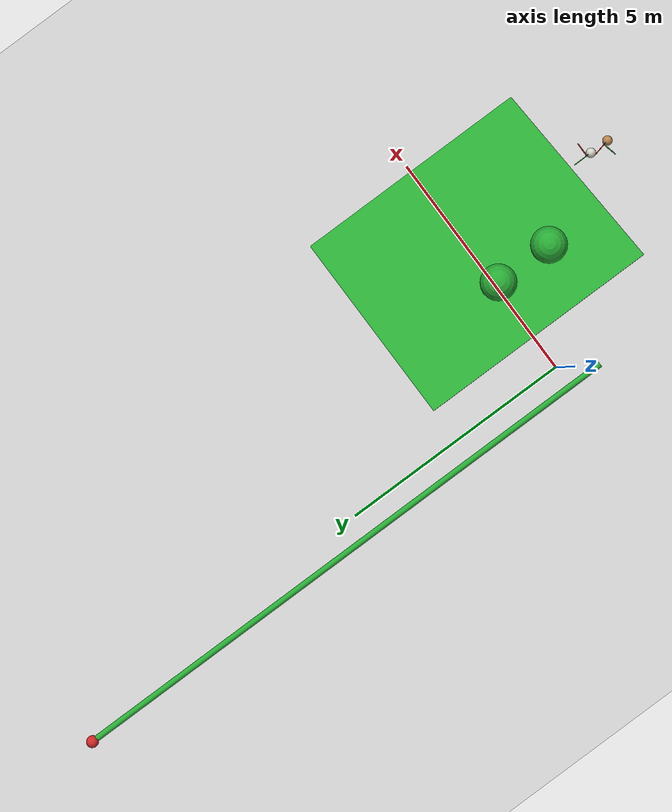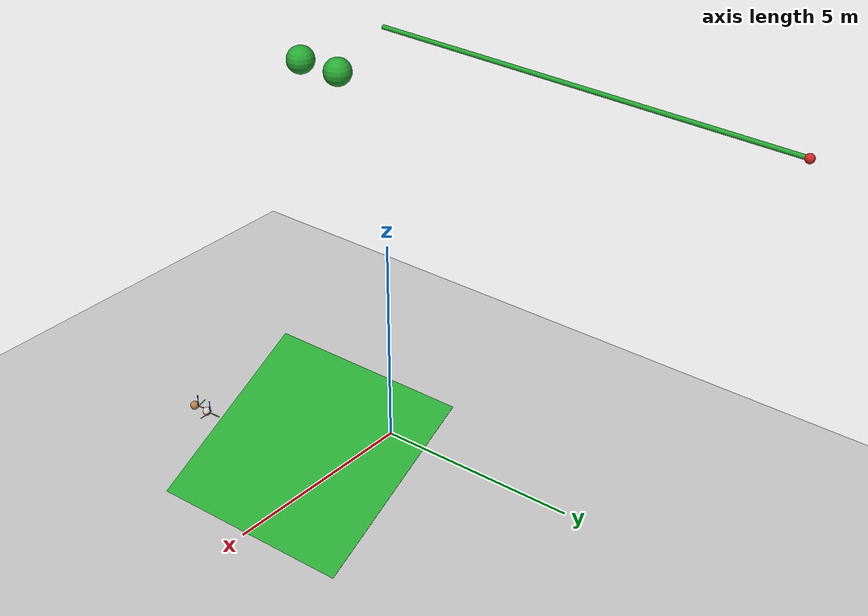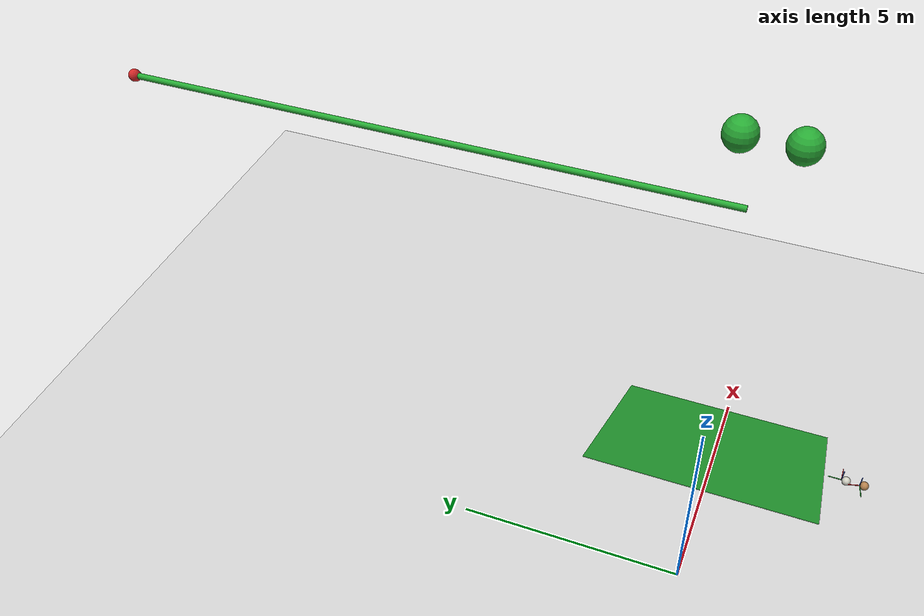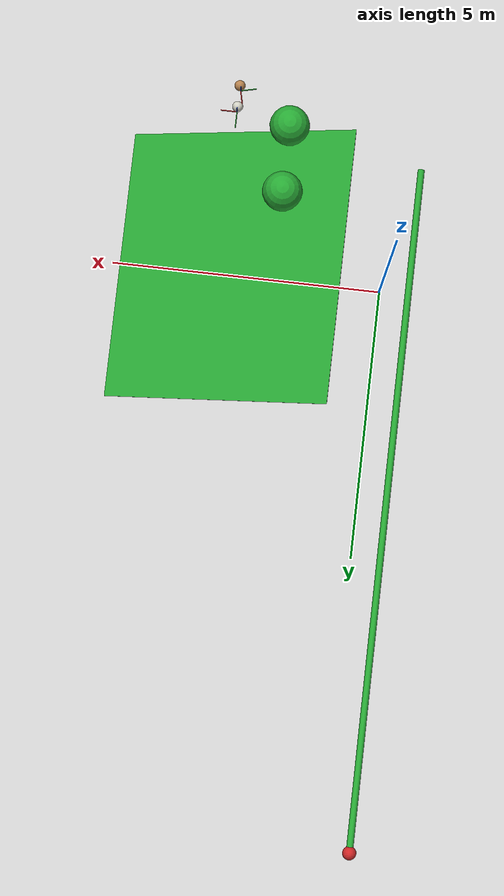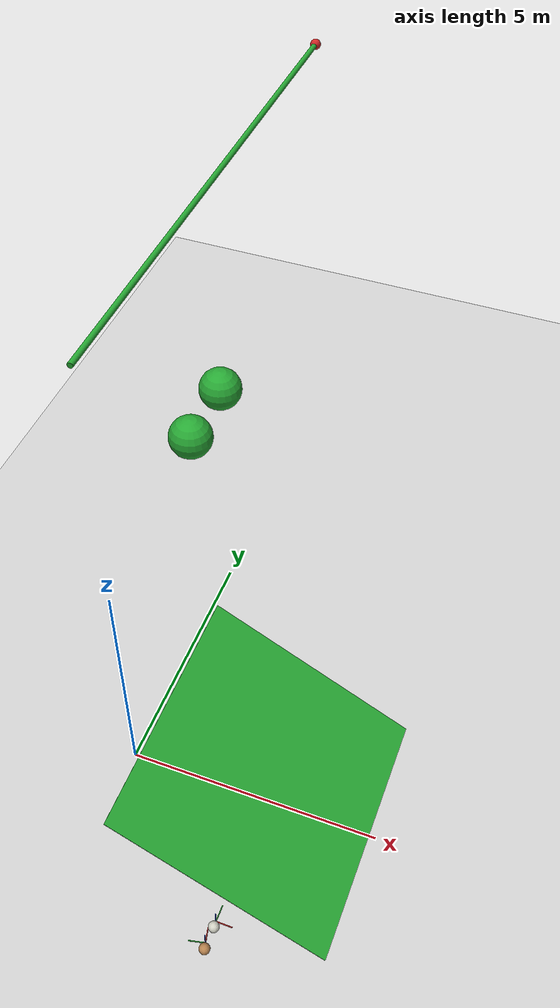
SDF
<?xml version="1.0" ?>
<sdf version="1.6">
  <world name="default">
    <gravity>0.000000 0.000000 -9.810000</gravity>
    <physics type="ode">
      <ode>
        <solver>
          <type>quick</type>
          <iters>1000</iters>
          <precon_iters>0</precon_iters>
          <sor>1.000000</sor>
        </solver>
        <constraints>
          <cfm>0.000000</cfm>
          <erp>0.200000</erp>
          <contact_max_correcting_vel>100.000000</contact_max_correcting_vel>
          <contact_surface_layer>0.01000</contact_surface_layer>
        </constraints>
      </ode>
      <bullet>
        <solver>
          <type>sequential_impulse</type>
          <iters>1000</iters>
          <sor>1.000000</sor>
        </solver>
        <constraints>
          <cfm>0.000000</cfm>
          <erp>0.200000</erp>
          <split_impulse>true</split_impulse>
          <split_impulse_penetration_threshold>-0.01</split_impulse_penetration_threshold>
          <contact_surface_layer>0.00000</contact_surface_layer>
        </constraints>
      </bullet>
      <real_time_update_rate>0.000000</real_time_update_rate>
      <max_step_size>0.001</max_step_size>
    </physics>
    <include>
      <uri>model://sun</uri>
    </include>
    <include>
      <uri>model://ground_plane</uri>
    </include>

    <spherical_coordinates>
      <surface_model>EARTH_WGS84</surface_model>
      <latitude_deg>37.4</latitude_deg>
      <longitude_deg>-122.1</longitude_deg>
      <elevation>0.0</elevation>
      <heading_deg>90</heading_deg>
    </spherical_coordinates>

    <model name="model_pendulum">
      <pose>0.0 0.0 10.2 1.57079633 0.0 0.0</pose>
      <link name="link_pendulum_rod">
        <pose>0.0 0.0 0.0 0.0 0.0 0.0</pose>
        <inertial>
          <pose>0.0 0.0 -10.0 0.0 0.0 0.0</pose>
          <inertia>
            <ixx>1e-1</ixx>
            <ixy>0.0</ixy>
            <ixz>0.0</ixz>
            <iyy>1e-1</iyy>
            <iyz>0.0</iyz>
            <izz>1e-1</izz>
          </inertia>
          <mass>5.0</mass>
        </inertial>
        <velocity_decay>
          <linear>0.0</linear>
          <angular>0.0</angular>
        </velocity_decay>
        <visual name="visual_cylinder">
          <pose>0.0 0.0 -5.0 0.0 0.0 0.0</pose>
          <geometry>
            <cylinder>
              <radius>0.05</radius>
              <length>10.0</length>
            </cylinder>
          </geometry>
          <material>
            <script><uri>file://media/materials/scripts/gazebo.material</uri><name>Gazebo/Green</name></script>
          </material>
        </visual>
        <collision name="collision_cylinder">
          <pose>0.0 0.0 -5.0 0.0 0.0 0.0</pose>
          <max_contacts>250</max_contacts>
          <geometry>
            <cylinder>
              <radius>0.05</radius>
              <length>10.0</length>
            </cylinder>
          </geometry>
        </collision>
        <gravity>true</gravity>
        <self_collide>true</self_collide>
        <kinematic>false</kinematic>
      </link>
      <joint name="joint_0" type="revolute">
        <parent>world</parent>
        <child>link_pendulum_rod</child>
        <pose>0.0 0.0 0.0 0.0 0.0 0.0</pose>
        <axis>
          <xyz>1.0 0.0 0.0</xyz>
        </axis>
      </joint>
      <link name="link_pendulum_ball">
        <pose>0.0 0.0 -10.0 0.0 0.0 0.0</pose>
        <inertial>
          <pose>0.0 0.0 0.0 0.0 0.0 0.0</pose>
          <inertia>
            <ixx>1e-1</ixx>
            <ixy>0.0</ixy>
            <ixz>0.0</ixz>
            <iyy>1e-1</iyy>
            <iyz>0.0</iyz>
            <izz>1e-1</izz>
          </inertia>
          <mass>5.0</mass>
        </inertial>
        <velocity_decay>
          <linear>0.0</linear>
          <angular>0.0</angular>
        </velocity_decay>
        <visual name="visual_sphere">
          <pose>0.0 0.0 0.0 0.0 0.0 0.0</pose>
          <geometry>
            <sphere>
              <radius>0.1</radius>
            </sphere>
          </geometry>
          <material>
            <script><uri>file://media/materials/scripts/gazebo.material</uri><name>Gazebo/Red</name></script>
          </material>
        </visual>
        <collision name="collision_sphere">
          <pose>0.0 0.0 0.0 0.0 0.0 0.0</pose>
          <max_contacts>250</max_contacts>
          <geometry>
            <sphere>
              <radius>0.1</radius>
            </sphere>
          </geometry>
        </collision>
        <gravity>true</gravity>
        <self_collide>true</self_collide>
        <kinematic>false</kinematic>
        <sensor name="pendulum_imu_sensor" type="imu">
          <always_on>1</always_on>
          <plugin name="pendulum_imu_sensor_plugin" filename="libImuSensorPlugin.so">
            <custom>1</custom>
          </plugin>
        </sensor>
      </link>
      <joint name="joint_1" type="revolute">
        <parent>link_pendulum_rod</parent>
        <child>link_pendulum_ball</child>
        <pose>0.0 0.0 0.0 0.0 0.0 0.0</pose>
        <axis>
          <limit>
            <lower>0</lower>
            <upper>0</upper>
            <effort>0</effort>
            <velocity>0</velocity>
          </limit>
          <xyz>0 0 1</xyz>
        </axis>
      </joint>
      <static>false</static>
    </model>

    <model name="model_ramp">
      <pose>3.0 0.0 1.0 0.0 0.5 0.0</pose>
      <link name="link_ramp">
        <pose>0.0 0.0 0.0 0.0 0.0 0.0</pose>
        <inertial>
          <pose>0.0 0.0 -10.0 0.0 0.0 0.0</pose>
          <inertia>
            <ixx>1e-1</ixx>
            <ixy>0.0</ixy>
            <ixz>0.0</ixz>
            <iyy>1e-1</iyy>
            <iyz>0.0</iyz>
            <izz>1e-1</izz>
          </inertia>
          <mass>5.0</mass>
        </inertial>
        <velocity_decay>
          <linear>0.0</linear>
          <angular>0.0</angular>
        </velocity_decay>
        <visual name="visual_sphere">
          <pose>0.0 0.0 0.0 0.0 0.0 0.0</pose>
          <geometry>
            <box>
              <size>5 5 0.01</size>
            </box>
          </geometry>
          <material>
            <script><uri>file://media/materials/scripts/gazebo.material</uri><name>Gazebo/Green</name></script>
          </material>
        </visual>
        <collision name="collision_box">
          <pose>0.0 0.0 0.0 0.0 0.0 0.0</pose>
          <max_contacts>250</max_contacts>
          <geometry>
            <box>
              <size>5 5 0.01</size>
            </box>
          </geometry>
        </collision>
        <gravity>true</gravity>
        <self_collide>true</self_collide>
        <kinematic>false</kinematic>
      </link>
      <static>true</static>
    </model>

    <model name="model_ball">
      <pose>2.0 -0.5 10.0 0.0 0.0 0.0</pose>
      <link name="link_ball">
        <pose>0.0 0.0 0.0 0.0 0.0 0.0</pose>
        <inertial>
          <pose>0.0 0.0 0.0 0.0 0.0 0.0</pose>
          <inertia>
            <ixx>1e-1</ixx>
            <ixy>0.0</ixy>
            <ixz>0.0</ixz>
            <iyy>1e-1</iyy>
            <iyz>0.0</iyz>
            <izz>1e-1</izz>
          </inertia>
          <mass>5.0</mass>
        </inertial>
        <velocity_decay>
          <linear>0.0</linear>
          <angular>0.0</angular>
        </velocity_decay>
        <visual name="visual_sphere">
          <pose>0.0 0.0 0.0 0.0 0.0 0.0</pose>
          <geometry>
            <sphere>
              <radius>0.3</radius>
            </sphere>
          </geometry>
          <material>
            <script><uri>file://media/materials/scripts/gazebo.material</uri><name>Gazebo/Green</name></script>
          </material>
        </visual>
        <collision name="collision_sphere">
          <pose>0.0 0.0 0.0 0.0 0.0 0.0</pose>
          <max_contacts>250</max_contacts>
          <geometry>
            <sphere>
              <radius>0.3</radius>
            </sphere>
          </geometry>
        </collision>
        <gravity>true</gravity>
        <self_collide>true</self_collide>
        <kinematic>false</kinematic>
        <sensor name="ball_imu_sensor" type="imu">
          <always_on>1</always_on>
          <plugin name="ball_imu_sensor_plugin" filename="libImuSensorPlugin.so">
            <custom>1</custom>
          </plugin>
        </sensor>
      </link>
      <static>false</static>
    </model>

    <model name="model_ball_no_friction">
      <pose>2.0 0.5 10.0 0.0 0 0.0</pose>
      <link name="link_ball_no_friction">
        <pose>0.0 0.0 0.0 0.0 0.0 0.0</pose>
        <inertial>
          <pose>0.0 0.0 0.0 0.0 0.0 0.0</pose>
          <inertia>
            <ixx>1e-1</ixx>
            <ixy>0.0</ixy>
            <ixz>0.0</ixz>
            <iyy>1e-1</iyy>
            <iyz>0.0</iyz>
            <izz>1e-1</izz>
          </inertia>
          <mass>5.0</mass>
        </inertial>
        <velocity_decay>
          <linear>0.0</linear>
          <angular>0.0</angular>
        </velocity_decay>
        <visual name="visual_sphere">
          <pose>0.0 0.0 0.0 0.0 0.0 0.0</pose>
          <geometry>
            <sphere>
              <radius>0.3</radius>
            </sphere>
          </geometry>
          <material>
            <script><uri>file://media/materials/scripts/gazebo.material</uri><name>Gazebo/Green</name></script>
          </material>
        </visual>
        <collision name="collision_sphere">
          <pose>0.0 0.0 0.0 0.0 0.0 0.0</pose>
          <max_contacts>250</max_contacts>
          <geometry>
            <sphere>
              <radius>0.3</radius>
            </sphere>
          </geometry>
          <surface>
            <friction>
              <ode>
                <mu>0</mu>
                <mu2>0</mu2>
              </ode>
            </friction>
          </surface>
        </collision>
        <gravity>true</gravity>
        <self_collide>true</self_collide>
        <kinematic>false</kinematic>
        <sensor name="ball_no_friction_imu_sensor" type="imu">
          <always_on>1</always_on>
          <plugin name="ball_no_friction_imu_sensor_plugin" filename="libImuSensorPlugin.so">
            <custom>1</custom>
          </plugin>
        </sensor>
      </link>
      <static>false</static>
    </model>

    <model name="model_floating_imu">
      <pose>3.0 -3.0 1.0 0.0 0.0 0.0</pose>
      <link name="link_floating_imu">
        <pose>0.0 0.0 -0.05 0.0 0.0 0.0</pose>
        <inertial>
          <inertia>
            <ixx>1e-1</ixx>
            <ixy>0.0</ixy>
            <ixz>0.0</ixz>
            <iyy>1e-1</iyy>
            <iyz>0.0</iyz>
            <izz>1e-1</izz>
          </inertia>
          <mass>5.0</mass>
        </inertial>
        <visual name="visual_sphere">
          <geometry>
            <sphere>
              <radius>0.1</radius>
            </sphere>
          </geometry>
          <material>
            <script>
              <uri>file://media/materials/scripts/gazebo.material</uri>
              <name>Gazebo/PaintedWall</name>
            </script>
          </material>
        </visual>
        <visual name="visual_x">
          <pose>0.15 0.1 0.0 0.0 1.5708 0.0</pose>
          <geometry>
            <cylinder>
              <length>0.30</length>
              <radius>0.01</radius>
            </cylinder>
          </geometry>
          <material>
            <script>
              <uri>file://media/materials/scripts/gazebo.material</uri>
              <name>Gazebo/Red</name>
            </script>
          </material>
        </visual>
        <visual name="visual_y">
          <pose>0.0 0.25 0.0 1.5708 0.0 0.0</pose>
          <geometry>
            <cylinder>
              <length>0.30</length>
              <radius>0.01</radius>
            </cylinder>
          </geometry>
          <material>
            <script>
              <uri>file://media/materials/scripts/gazebo.material</uri>
              <name>Gazebo/Green</name>
            </script>
          </material>
        </visual>
        <visual name="visual_z">
          <pose>0.0 0.1 0.15 0.0 0.0 0.0</pose>
          <geometry>
            <cylinder>
              <length>0.30</length>
              <radius>0.01</radius>
            </cylinder>
          </geometry>
          <material>
            <script>
              <uri>file://media/materials/scripts/gazebo.material</uri>
              <name>Gazebo/Blue</name>
            </script>
          </material>
        </visual>
        <collision name="collision_sphere">
          <max_contacts>250</max_contacts>
          <geometry>
            <sphere>
              <radius>0.1</radius>
            </sphere>
          </geometry>
        </collision>
        <gravity>false</gravity>
        <self_collide>false</self_collide>
        <kinematic>false</kinematic>
        <sensor name="ball_floating_imu_sensor" type="imu">
          <pose>0 0.1 0 0 0 0</pose>
          <always_on>1</always_on>
          <plugin name="ball_floating_imu_sensor_plugin" filename="libImuSensorPlugin.so">
            <custom>1</custom>
          </plugin>
        </sensor>
      </link>
      <link name="link_floating_imu_2">
        <pose>0.0 -0.40 -0.05 0.0 0.0 1.8</pose>
        <inertial>
          <inertia>
            <ixx>1e-1</ixx>
            <ixy>0.0</ixy>
            <ixz>0.0</ixz>
            <iyy>1e-1</iyy>
            <iyz>0.0</iyz>
            <izz>1e-1</izz>
          </inertia>
          <mass>5.0</mass>
        </inertial>
        <visual name="visual_sphere">
          <geometry>
            <sphere>
              <radius>0.1</radius>
            </sphere>
          </geometry>
          <material>
            <script>
              <uri>file://media/materials/scripts/gazebo.material</uri>
              <name>Gazebo/WoodFloor</name>
            </script>
          </material>
        </visual>
        <visual name="visual_x">
          <pose>0.21 0.0 0.0 0.0 1.5708 0.0</pose>
          <geometry>
            <cylinder>
              <length>0.30</length>
              <radius>0.01</radius>
            </cylinder>
          </geometry>
          <material>
            <script>
              <uri>file://media/materials/scripts/gazebo.material</uri>
              <name>Gazebo/Red</name>
            </script>
          </material>
        </visual>
        <visual name="visual_y">
          <pose>0.1 0.15 0.0 1.5708 0.0 0.0</pose>
          <geometry>
            <cylinder>
              <length>0.30</length>
              <radius>0.01</radius>
            </cylinder>
          </geometry>
          <material>
            <script>
              <uri>file://media/materials/scripts/gazebo.material</uri>
              <name>Gazebo/Green</name>
            </script>
          </material>
        </visual>
        <visual name="visual_z">
          <pose>0.1 0.0 0.15 0.0 0.0 0.0</pose>
          <geometry>
            <cylinder>
              <length>0.30</length>
              <radius>0.01</radius>
            </cylinder>
          </geometry>
          <material>
            <script>
              <uri>file://media/materials/scripts/gazebo.material</uri>
              <name>Gazebo/Blue</name>
            </script>
          </material>
        </visual>
        <collision name="collision_sphere">
          <max_contacts>250</max_contacts>
          <geometry>
            <sphere>
              <radius>0.1</radius>
            </sphere>
          </geometry>
        </collision>
        <gravity>false</gravity>
        <self_collide>false</self_collide>
        <kinematic>false</kinematic>
        <sensor name="ball_floating_imu_sensor_2" type="imu">
          <pose>0.10 0 0 0 0 0</pose>
          <always_on>1</always_on>
        </sensor>
        <sensor name="ball_floating_imu_sensor_custom_local" type="imu">
          <pose>0.10 0 0 0 0 0</pose>
          <always_on>1</always_on>
          <imu>
            <reference_frame_orientation imu_localization="CUSTOM">
              <rpy parent_frame="">0 3.1415927 0</rpy>
            </reference_frame_orientation>
          </imu>
        </sensor>
        <sensor name="ball_floating_imu_sensor_custom_world" type="imu">
          <pose>0.10 0 0 0 0 0</pose>
          <always_on>1</always_on>
          <imu>
            <reference_frame_orientation imu_localization="CUSTOM">
              <rpy parent_frame="world">0 0 3.1415927</rpy>
            </reference_frame_orientation>
          </imu>
        </sensor>
        <sensor name="ball_floating_imu_sensor_ned" type="imu">
          <pose>0.10 0 0 0 0 0</pose>
          <always_on>1</always_on>
          <imu>
            <reference_frame_orientation imu_localization="NED"/>
          </imu>
        </sensor>
        <sensor name="ball_floating_imu_sensor_gravity" type="imu">
          <pose>0.10 0 0 0 0 0</pose>
          <always_on>1</always_on>
          <imu>
            <reference_frame_orientation imu_localization="GRAV">
              <rpy parent_frame="world">0 0 0</rpy>
              <imu_dir_x parent_frame="world">1 0 0</imu_dir_x>
            </reference_frame_orientation>
          </imu>
        </sensor>
      </link>
    </model>
  </world>
</sdf>
